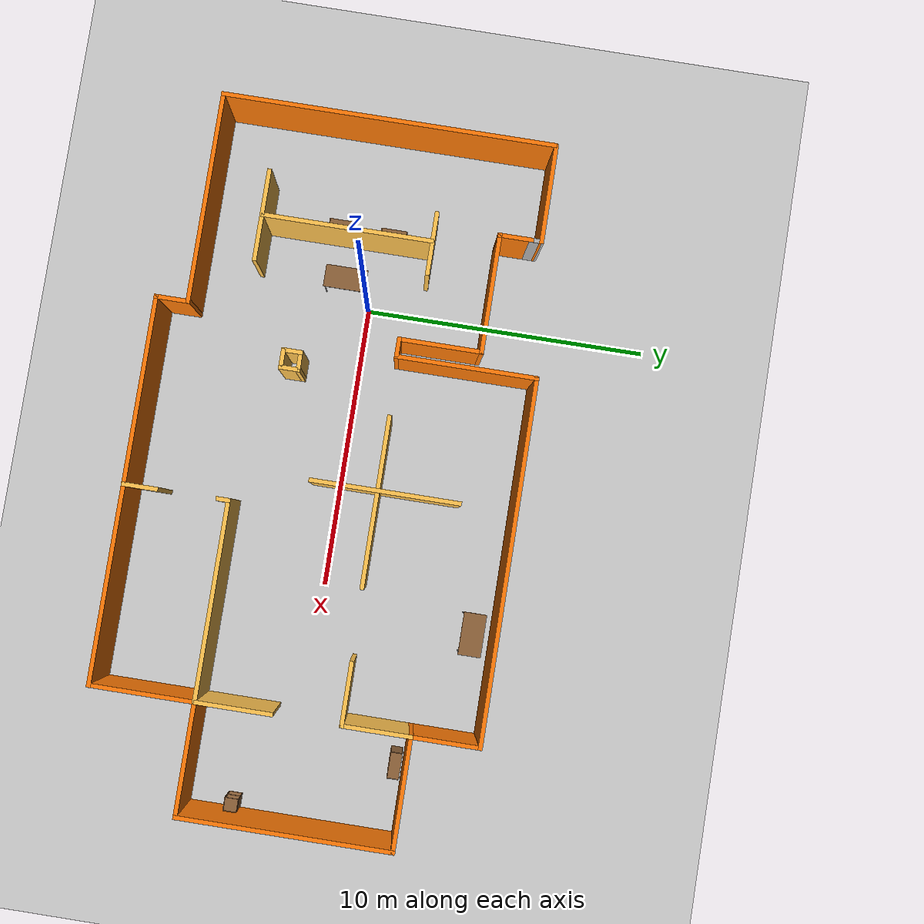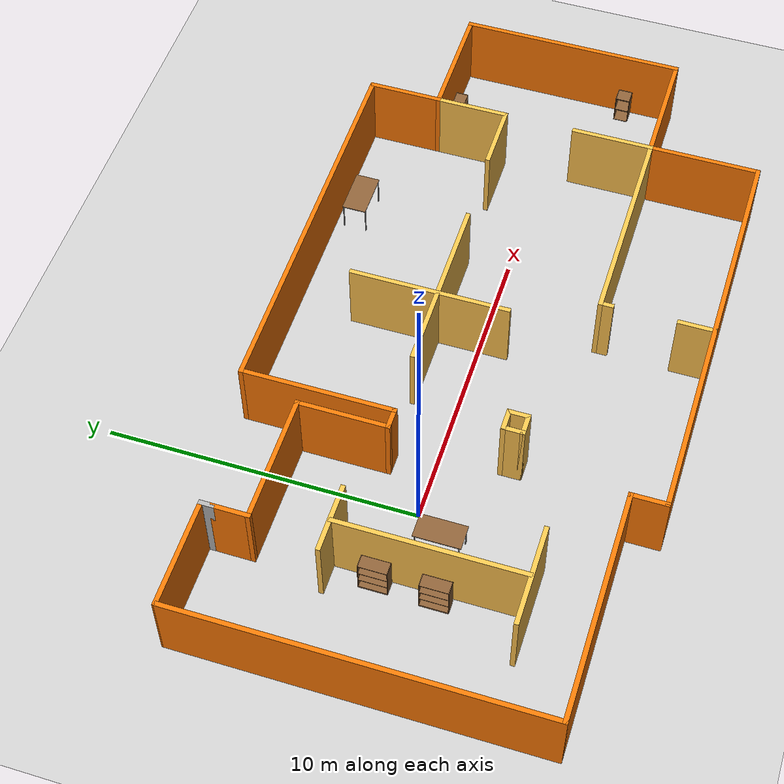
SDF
<sdf version="1.7">
 <world name="default">
  <light name="sun" type="directional">
   <pose>0 0 10 0 -0 0</pose>
   <diffuse>0.8 0.8 0.8 1</diffuse>
   <specular>0.2 0.2 0.2 1</specular>
   <attenuation>
    <range>1000</range>
    <constant>0.9</constant>
    <linear>0.01</linear>
    <quadratic>0.001</quadratic>
   </attenuation>
   <direction>-0.5 0.1 -0.9</direction>
   <spot><inner_angle>0</inner_angle><outer_angle>0</outer_angle><falloff>0</falloff></spot>
  </light>
  <model name="ground_plane">
   <static>1</static>
   <link name="link">
    <collision name="collision">
     <geometry><plane><normal>0 0 1</normal><size>100 100</size></plane></geometry>
     <surface><friction><ode><mu>100</mu><mu2>50</mu2></ode></friction></surface>
    </collision>
    <visual name="visual">
     <cast_shadows>0</cast_shadows>
     <geometry><plane><normal>0 0 1</normal><size>100 100</size></plane></geometry>
     <material><ambient>0.8 0.8 0.8 1</ambient><diffuse>0.8 0.8 0.8 1</diffuse></material>
    </visual>
   </link>
  </model>
  <gravity>0 0 -9.8</gravity>
  <magnetic_field>6e-06 2.3e-05 -4.2e-05</magnetic_field>
  <atmosphere type="adiabatic"/>
  <physics type="ode">
   <max_step_size>0.001</max_step_size>
   <real_time_factor>1</real_time_factor>
   <real_time_update_rate>1000</real_time_update_rate>
  </physics>
  <plugin filename="gz-sim-physics-system" name="gz::sim::systems::Physics"/>
  <plugin filename="gz-sim-user-commands-system" name="gz::sim::systems::UserCommands"/>
  <plugin filename="gz-sim-scene-broadcaster-system" name="gz::sim::systems::SceneBroadcaster"/>
  <plugin filename="gz-sim-sensors-system" name="gz::sim::systems::Sensors">
   <render_engine>ogre2</render_engine>
  </plugin>
  <plugin filename="gz-sim-imu-system" name="gz::sim::systems::Imu"/>
  <scene><ambient>0.4 0.4 0.4 1</ambient><background>0.7 0.7 0.7 1</background><shadows>1</shadows></scene>
  <audio><device>default</device></audio>
  <spherical_coordinates>
   <surface_model>EARTH_WGS84</surface_model>
   <latitude_deg>0</latitude_deg>
   <longitude_deg>0</longitude_deg>
   <elevation>0</elevation>
   <heading_deg>0</heading_deg>
  </spherical_coordinates>
  <model name="arm_house">
   <pose>6.02431 -0.472449 0 0 -0 0</pose>
   <link name="Wall_101">
    <collision name="Wall_101_Collision">
     <geometry><box><size>2.75 0.15 2.5</size></box></geometry>
     <pose>0 0 1.25 0 -0 0</pose>
    </collision>
    <visual name="Wall_101_Visual">
     <pose>0 0 1.25 0 -0 0</pose>
     <geometry><box><size>2.75 0.15 2.5</size></box></geometry>
     <material><ambient>1 0.764706 0.305882 1</ambient><diffuse>1 0.764706 0.305882 1</diffuse></material>
     <meta><layer>0</layer></meta>
    </visual>
    <pose>8.425 -1.75 0 0 -0 1.5708</pose>
   </link>
   <link name="Wall_103">
    <collision name="Wall_103_Collision">
     <geometry><box><size>7 0.15 2.5</size></box></geometry>
     <pose>0 0 1.25 0 -0 0</pose>
    </collision>
    <visual name="Wall_103_Visual">
     <pose>0 0 1.25 0 -0 0</pose>
     <geometry><box><size>7 0.15 2.5</size></box></geometry>
     <material><ambient>1 0.764706 0.305882 1</ambient><diffuse>1 0.764706 0.305882 1</diffuse></material>
     <meta><layer>0</layer></meta>
    </visual>
    <pose>5 -3.05 0 0 -0 3.14159</pose>
   </link>
   <link name="Wall_104">
    <collision name="Wall_104_Collision">
     <geometry><box><size>0.5 0.15 2.5</size></box></geometry>
     <pose>0 0 1.25 0 -0 0</pose>
    </collision>
    <visual name="Wall_104_Visual">
     <pose>0 0 1.25 0 -0 0</pose>
     <geometry><box><size>0.5 0.15 2.5</size></box></geometry>
     <material><ambient>1 0.764706 0.305882 1</ambient><diffuse>1 0.764706 0.305882 1</diffuse></material>
     <meta><layer>0</layer></meta>
    </visual>
    <pose>1.575 -3.225 0 0 -0 -1.5708</pose>
   </link>
   <link name="Wall_106">
    <collision name="Wall_106_Collision">
     <geometry><box><size>1.25 0.15 2.5</size></box></geometry>
     <pose>0 0 1.25 0 -0 0</pose>
    </collision>
    <visual name="Wall_106_Visual">
     <pose>0 0 1.25 0 -0 0</pose>
     <geometry><box><size>1.25 0.15 2.5</size></box></geometry>
     <material><ambient>1 0.764706 0.305882 1</ambient><diffuse>1 0.764706 0.305882 1</diffuse></material>
     <meta><layer>0</layer></meta>
    </visual>
    <pose>1.58669 -6.09197 0 0 -0 1.5708</pose>
   </link>
   <link name="Wall_108">
    <collision name="Wall_108_Collision">
     <geometry><box><size>0.75 0.15 2.5</size></box></geometry>
     <pose>0 0 1.25 0 -0 0</pose>
    </collision>
    <visual name="Wall_108_Visual">
     <pose>0 0 1.25 0 -0 0</pose>
     <geometry><box><size>0.75 0.15 2.5</size></box></geometry>
     <material><ambient>1 0.764706 0.305882 1</ambient><diffuse>1 0.764706 0.305882 1</diffuse></material>
     <meta><layer>0</layer></meta>
    </visual>
    <pose>-3.79225 -1.74467 0 0 -0 -1.5708</pose>
   </link>
   <link name="Wall_109">
    <collision name="Wall_109_Collision">
     <geometry><box><size>0.75 0.15 2.5</size></box></geometry>
     <pose>0 0 1.25 0 -0 0</pose>
    </collision>
    <visual name="Wall_109_Visual">
     <pose>0 0 1.25 0 -0 0</pose>
     <geometry><box><size>0.75 0.15 2.5</size></box></geometry>
     <material><ambient>1 0.764706 0.305882 1</ambient><diffuse>1 0.764706 0.305882 1</diffuse></material>
     <meta><layer>0</layer></meta>
    </visual>
    <pose>-3.49225 -2.04467 0 0 -0 0</pose>
   </link>
   <link name="Wall_110">
    <collision name="Wall_110_Collision">
     <geometry><box><size>0.75 0.15 2.5</size></box></geometry>
     <pose>0 0 1.25 0 -0 0</pose>
    </collision>
    <visual name="Wall_110_Visual">
     <pose>0 0 1.25 0 -0 0</pose>
     <geometry><box><size>0.75 0.15 2.5</size></box></geometry>
     <material><ambient>1 0.764706 0.305882 1</ambient><diffuse>1 0.764706 0.305882 1</diffuse></material>
     <meta><layer>0</layer></meta>
    </visual>
    <pose>-3.19225 -1.74467 0 0 -0 1.5708</pose>
   </link>
   <link name="Wall_111">
    <collision name="Wall_111_Collision">
     <geometry><box><size>0.75 0.15 2.5</size></box></geometry>
     <pose>0 0 1.25 0 -0 0</pose>
    </collision>
    <visual name="Wall_111_Visual">
     <pose>0 0 1.25 0 -0 0</pose>
     <geometry><box><size>0.75 0.15 2.5</size></box></geometry>
     <material><ambient>1 0.764706 0.305882 1</ambient><diffuse>1 0.764706 0.305882 1</diffuse></material>
     <meta><layer>0</layer></meta>
    </visual>
    <pose>-3.49225 -1.44467 0 0 -0 3.14159</pose>
   </link>
   <link name="Wall_67">
    <collision name="Wall_67_Collision">
     <geometry><box><size>11.75 0.15 2.5</size></box></geometry>
     <pose>0 0 1.25 0 -0 0</pose>
    </collision>
    <visual name="Wall_67_Visual">
     <pose>0 0 1.25 0 -0 0</pose>
     <geometry><box><size>11.75 0.15 2.5</size></box></geometry>
     <material>
      <ambient>0.996078 0.47451 0.0196078 1</ambient>
      <diffuse>0.996078 0.47451 0.0196078 1</diffuse>
     </material>
     <meta><layer>0</layer></meta>
    </visual>
    <pose>-12.275 0.25 0 0 -0 -1.5708</pose>
   </link>
   <link name="Wall_68">
    <collision name="Wall_68_Collision">
     <geometry><box><size>7.5 0.15 2.5</size></box></geometry>
     <pose>0 0 1.25 0 -0 0</pose>
    </collision>
    <visual name="Wall_68_Visual">
     <pose>0 0 1.25 0 -0 0</pose>
     <geometry><box><size>7.5 0.15 2.5</size></box></geometry>
     <material>
      <ambient>0.996078 0.47451 0.0196078 1</ambient>
      <diffuse>0.996078 0.47451 0.0196078 1</diffuse>
     </material>
     <meta><layer>0</layer></meta>
    </visual>
    <pose>-8.6 -5.55 0 0 -0 0</pose>
   </link>
   <link name="Wall_69">
    <collision name="Wall_69_Collision">
     <geometry><box><size>1.25 0.15 2.5</size></box></geometry>
     <pose>0 0 1.25 0 -0 0</pose>
    </collision>
    <visual name="Wall_69_Visual">
     <pose>0 0 1.25 0 -0 0</pose>
     <geometry><box><size>1.25 0.15 2.5</size></box></geometry>
     <material>
      <ambient>0.996078 0.47451 0.0196078 1</ambient>
      <diffuse>0.996078 0.47451 0.0196078 1</diffuse>
     </material>
     <meta><layer>0</layer></meta>
    </visual>
    <pose>-4.925 -6.1 0 0 -0 -1.5708</pose>
   </link>
   <link name="Wall_70">
    <collision name="Wall_70_Collision">
     <geometry><box><size>13.5 0.15 2.5</size></box></geometry>
     <pose>0 0 1.25 0 -0 0</pose>
    </collision>
    <visual name="Wall_70_Visual">
     <pose>0 0 1.25 0 -0 0</pose>
     <geometry><box><size>13.5 0.15 2.5</size></box></geometry>
     <material>
      <ambient>0.996078 0.47451 0.0196078 1</ambient>
      <diffuse>0.996078 0.47451 0.0196078 1</diffuse>
     </material>
     <meta><layer>0</layer></meta>
    </visual>
    <pose>1.75 -6.65 0 0 -0 0</pose>
   </link>
   <link name="Wall_71">
    <collision name="Wall_71_Collision">
     <geometry><box><size>3.75 0.15 2.5</size></box></geometry>
     <pose>0 0 1.25 0 -0 0</pose>
    </collision>
    <visual name="Wall_71_Visual">
     <pose>0 0 1.25 0 -0 0</pose>
     <geometry><box><size>3.75 0.15 2.5</size></box></geometry>
     <material>
      <ambient>0.996078 0.47451 0.0196078 1</ambient>
      <diffuse>0.996078 0.47451 0.0196078 1</diffuse>
     </material>
     <meta><layer>0</layer></meta>
    </visual>
    <pose>8.425 -4.85 0 0 -0 1.5708</pose>
   </link>
   <link name="Wall_72">
    <collision name="Wall_72_Collision">
     <geometry><box><size>4 0.15 2.5</size></box></geometry>
     <pose>0 0 1.25 0 -0 0</pose>
    </collision>
    <visual name="Wall_72_Visual">
     <pose>0 0 1.25 0 -0 0</pose>
     <geometry><box><size>4 0.15 2.5</size></box></geometry>
     <material>
      <ambient>0.996078 0.47451 0.0196078 1</ambient>
      <diffuse>0.996078 0.47451 0.0196078 1</diffuse>
     </material>
     <meta><layer>0</layer></meta>
    </visual>
    <pose>10.35 -3.05 0 0 -0 0</pose>
   </link>
   <link name="Wall_73">
    <collision name="Wall_73_Collision">
     <geometry><box><size>7.5 0.15 2.5</size></box></geometry>
     <pose>0 0 1.25 0 -0 0</pose>
    </collision>
    <visual name="Wall_73_Visual">
     <pose>0 0 1.25 0 -0 0</pose>
     <geometry><box><size>7.5 0.15 2.5</size></box></geometry>
     <material>
      <ambient>0.996078 0.47451 0.0196078 1</ambient>
      <diffuse>0.996078 0.47451 0.0196078 1</diffuse>
     </material>
     <meta><layer>0</layer></meta>
    </visual>
    <pose>12.275 0.625 0 0 -0 1.5708</pose>
   </link>
   <link name="Wall_74">
    <collision name="Wall_74_Collision">
     <geometry><box><size>4 0.15 2.5</size></box></geometry>
     <pose>0 0 1.25 0 -0 0</pose>
    </collision>
    <visual name="Wall_74_Visual">
     <pose>0 0 1.25 0 -0 0</pose>
     <geometry><box><size>4 0.15 2.5</size></box></geometry>
     <material>
      <ambient>0.996078 0.47451 0.0196078 1</ambient>
      <diffuse>0.996078 0.47451 0.0196078 1</diffuse>
     </material>
     <meta><layer>0</layer></meta>
    </visual>
    <pose>10.35 4.3 0 0 -0 3.14159</pose>
   </link>
   <link name="Wall_75">
    <collision name="Wall_75_Collision">
     <geometry><box><size>2.5 0.15 2.5</size></box></geometry>
     <pose>0 0 1.25 0 -0 0</pose>
    </collision>
    <visual name="Wall_75_Visual">
     <pose>0 0 1.25 0 -0 0</pose>
     <geometry><box><size>2.5 0.15 2.5</size></box></geometry>
     <material>
      <ambient>0.996078 0.47451 0.0196078 1</ambient>
      <diffuse>0.996078 0.47451 0.0196078 1</diffuse>
     </material>
     <meta><layer>0</layer></meta>
    </visual>
    <pose>8.425 5.475 0 0 -0 1.5708</pose>
   </link>
   <link name="Wall_76">
    <collision name="Wall_76_Collision">
     <geometry><box><size>12.75 0.15 2.5</size></box></geometry>
     <pose>0 0 1.25 0 -0 0</pose>
    </collision>
    <visual name="Wall_76_Visual">
     <pose>0 0 1.25 0 -0 0</pose>
     <geometry><box><size>12.75 0.15 2.5</size></box></geometry>
     <material>
      <ambient>0.996078 0.47451 0.0196078 1</ambient>
      <diffuse>0.996078 0.47451 0.0196078 1</diffuse>
     </material>
     <meta><layer>0</layer></meta>
    </visual>
    <pose>2.125 6.65 0 0 -0 3.14159</pose>
   </link>
   <link name="Wall_77">
    <collision name="Wall_77_Collision">
     <geometry><box><size>5 0.15 2.5</size></box></geometry>
     <pose>0 0 1.25 0 -0 0</pose>
    </collision>
    <visual name="Wall_77_Visual">
     <pose>0 0 1.25 0 -0 0</pose>
     <geometry><box><size>5 0.15 2.5</size></box></geometry>
     <material>
      <ambient>0.996078 0.47451 0.0196078 1</ambient>
      <diffuse>0.996078 0.47451 0.0196078 1</diffuse>
     </material>
     <meta><layer>0</layer></meta>
    </visual>
    <pose>-4.175 4.225 0 0 -0 -1.5708</pose>
   </link>
   <link name="Wall_78">
    <collision name="Wall_78_Collision">
     <geometry><box><size>0.75 0.15 2.5</size></box></geometry>
     <pose>0 0 1.25 0 -0 0</pose>
    </collision>
    <visual name="Wall_78_Visual">
     <pose>0 0 1.25 0 -0 0</pose>
     <geometry><box><size>0.75 0.15 2.5</size></box></geometry>
     <material>
      <ambient>0.996078 0.47451 0.0196078 1</ambient>
      <diffuse>0.996078 0.47451 0.0196078 1</diffuse>
     </material>
     <meta><layer>0</layer></meta>
    </visual>
    <pose>-4.475 1.8 0 0 -0 3.14159</pose>
   </link>
   <link name="Wall_79">
    <collision name="Wall_79_Collision">
     <geometry><box><size>3 0.15 2.5</size></box></geometry>
     <pose>0 0 1.25 0 -0 0</pose>
    </collision>
    <visual name="Wall_79_Visual">
     <pose>0 0 1.25 0 -0 0</pose>
     <geometry><box><size>3 0.15 2.5</size></box></geometry>
     <material>
      <ambient>0.996078 0.47451 0.0196078 1</ambient>
      <diffuse>0.996078 0.47451 0.0196078 1</diffuse>
     </material>
     <meta><layer>0</layer></meta>
    </visual>
    <pose>-4.775 3.225 0 0 -0 1.5708</pose>
   </link>
   <link name="Wall_80">
    <collision name="Wall_80_Collision">
     <geometry><box><size>4.25 0.15 2.5</size></box></geometry>
     <pose>0 0 1.25 0 -0 0</pose>
    </collision>
    <visual name="Wall_80_Visual">
     <pose>0 0 1.25 0 -0 0</pose>
     <geometry><box><size>4.25 0.15 2.5</size></box></geometry>
     <material>
      <ambient>0.996078 0.47451 0.0196078 1</ambient>
      <diffuse>0.996078 0.47451 0.0196078 1</diffuse>
     </material>
     <meta><layer>0</layer></meta>
    </visual>
    <pose>-6.825 4.65 0 0 -0 3.14159</pose>
   </link>
   <link name="Wall_81">
    <collision name="Wall_81_Collision">
     <geometry><box><size>1.25 0.15 2.5</size></box></geometry>
     <pose>0 0 1.25 0 -0 0</pose>
    </collision>
    <visual name="Wall_81_Visual">
     <pose>0 0 1.25 0 -0 0</pose>
     <geometry><box><size>1.25 0.15 2.5</size></box></geometry>
     <material>
      <ambient>0.996078 0.47451 0.0196078 1</ambient>
      <diffuse>0.996078 0.47451 0.0196078 1</diffuse>
     </material>
     <meta><layer>0</layer></meta>
    </visual>
    <pose>-8.875 5.2 0 0 -0 1.5708</pose>
   </link>
   <link name="Wall_82">
    <collision name="Wall_82_Collision">
     <geometry><box><size>0.5 0.15 2.5</size></box></geometry>
     <pose>0 0 1.25 0 -0 0</pose>
    </collision>
    <visual name="Wall_82_Visual">
     <pose>0 0 1.25 0 -0 0</pose>
     <geometry><box><size>0.5 0.15 2.5</size></box></geometry>
     <material><ambient>1 1 1 1</ambient><diffuse>0.7 0.7 0.7 1</diffuse></material>
     <meta><layer>0</layer></meta>
    </visual>
    <pose>-8.875 5.925 0 0 -0 1.5708</pose>
   </link>
   <link name="Wall_83">
    <collision name="Wall_83_Collision">
     <geometry><box><size>3.5422 0.15 2.5</size></box></geometry>
     <pose>0 0 1.25 0 -0 0</pose>
    </collision>
    <visual name="Wall_83_Visual">
     <pose>0 0 1.25 0 -0 0</pose>
     <geometry><box><size>3.5422 0.15 2.5</size></box></geometry>
     <material>
      <ambient>0.996078 0.47451 0.0196078 1</ambient>
      <diffuse>0.996078 0.47451 0.0196078 1</diffuse>
     </material>
     <meta><layer>0</layer></meta>
    </visual>
    <pose>-10.5711 6.09939 0 0 -0 -3.14123</pose>
   </link>
   <link name="Wall_85">
    <collision name="Wall_85_Collision">
     <geometry><box><size>2.25 0.15 2.5</size></box></geometry>
     <pose>0 0 1.25 0 -0 0</pose>
    </collision>
    <visual name="Wall_85_Visual">
     <pose>0 0 1.25 0 -0 0</pose>
     <geometry><box><size>2.25 0.15 2.5</size></box></geometry>
     <material><ambient>1 0.764706 0.305882 1</ambient><diffuse>1 0.764706 0.305882 1</diffuse></material>
     <meta><layer>0</layer></meta>
    </visual>
    <pose>-8.22484 2.39665 0 0 -0 0</pose>
   </link>
   <link name="Wall_87">
    <collision name="Wall_87_Collision">
     <geometry><box><size>6 0.15 2.5</size></box></geometry>
     <pose>0 0 1.25 0 -0 0</pose>
    </collision>
    <visual name="Wall_87_Visual">
     <pose>0 0 1.25 0 -0 0</pose>
     <geometry><box><size>6 0.15 2.5</size></box></geometry>
     <material><ambient>1 0.764706 0.305882 1</ambient><diffuse>1 0.764706 0.305882 1</diffuse></material>
     <meta><layer>0</layer></meta>
    </visual>
    <pose>-8.30484 -0.567336 0 0 -0 -1.5708</pose>
   </link>
   <link name="Wall_90">
    <collision name="Wall_90_Collision">
     <geometry><box><size>3.25 0.15 2.5</size></box></geometry>
     <pose>0 0 1.25 0 -0 0</pose>
    </collision>
    <visual name="Wall_90_Visual">
     <pose>0 0 1.25 0 -0 0</pose>
     <geometry><box><size>3.25 0.15 2.5</size></box></geometry>
     <material><ambient>1 0.764706 0.305882 1</ambient><diffuse>1 0.764706 0.305882 1</diffuse></material>
     <meta><layer>0</layer></meta>
    </visual>
    <pose>-8.2937 -3.54127 0 0 -0 0</pose>
   </link>
   <link name="Wall_92">
    <collision name="Wall_92_Collision">
     <geometry><box><size>6 0.15 2.5</size></box></geometry>
     <pose>0 0 1.25 0 -0 0</pose>
    </collision>
    <visual name="Wall_92_Visual">
     <pose>0 0 1.25 0 -0 0</pose>
     <geometry><box><size>6 0.15 2.5</size></box></geometry>
     <material><ambient>1 0.764706 0.305882 1</ambient><diffuse>1 0.764706 0.305882 1</diffuse></material>
     <meta><layer>0</layer></meta>
    </visual>
    <pose>0.843608 1.89041 0 0 -0 0</pose>
   </link>
   <link name="Wall_94">
    <collision name="Wall_94_Collision">
     <geometry><box><size>5.25 0.15 2.5</size></box></geometry>
     <pose>0 0 1.25 0 -0 0</pose>
    </collision>
    <visual name="Wall_94_Visual">
     <pose>0 0 1.25 0 -0 0</pose>
     <geometry><box><size>5.25 0.15 2.5</size></box></geometry>
     <material><ambient>1 0.764706 0.305882 1</ambient><diffuse>1 0.764706 0.305882 1</diffuse></material>
     <meta><layer>0</layer></meta>
    </visual>
    <pose>0.454094 2.15132 0 0 -0 -1.5708</pose>
   </link>
   <link name="Wall_98">
    <collision name="Wall_98_Collision">
     <geometry><box><size>2.5 0.15 2.5</size></box></geometry>
     <pose>0 0 1.25 0 -0 0</pose>
    </collision>
    <visual name="Wall_98_Visual">
     <pose>0 0 1.25 0 -0 0</pose>
     <geometry><box><size>2.5 0.15 2.5</size></box></geometry>
     <material><ambient>1 0.764706 0.305882 1</ambient><diffuse>1 0.764706 0.305882 1</diffuse></material>
     <meta><layer>0</layer></meta>
    </visual>
    <pose>8.425 3.125 0 0 -0 -1.5708</pose>
   </link>
   <link name="Wall_99">
    <collision name="Wall_99_Collision">
     <geometry><box><size>2.25 0.15 2.5</size></box></geometry>
     <pose>0 0 1.25 0 -0 0</pose>
    </collision>
    <visual name="Wall_99_Visual">
     <pose>0 0 1.25 0 -0 0</pose>
     <geometry><box><size>2.25 0.15 2.5</size></box></geometry>
     <material><ambient>1 0.764706 0.305882 1</ambient><diffuse>1 0.764706 0.305882 1</diffuse></material>
     <meta><layer>0</layer></meta>
    </visual>
    <pose>7.375 1.95 0 0 -0 3.14159</pose>
   </link>
   <static>1</static>
  </model>
  <model name="table">
   <static>1</static>
   <link name="link">
    <collision name="surface">
     <pose>0 0 1 0 -0 0</pose>
     <geometry><box><size>1.5 0.8 0.03</size></box></geometry>
     <surface><friction><ode><mu>0.6</mu><mu2>0.6</mu2></ode></friction></surface>
    </collision>
    <visual name="visual1">
     <pose>0 0 1 0 -0 0</pose>
     <geometry><box><size>1.5 0.8 0.03</size></box></geometry>
     <material><ambient>0.55 0.38 0.22 1</ambient><diffuse>0.55 0.38 0.22 1</diffuse></material>
    </visual>
    <collision name="front_left_leg">
     <pose>0.68 0.38 0.5 0 -0 0</pose>
     <geometry><cylinder><radius>0.02</radius><length>1</length></cylinder></geometry>
    </collision>
    <visual name="front_left_leg">
     <pose>0.68 0.38 0.5 0 -0 0</pose>
     <geometry><cylinder><radius>0.02</radius><length>1</length></cylinder></geometry>
     <material><ambient>0.3 0.3 0.3 1</ambient><diffuse>0.7 0.7 0.7 1</diffuse></material>
    </visual>
    <collision name="front_right_leg">
     <pose>0.68 -0.38 0.5 0 -0 0</pose>
     <geometry><cylinder><radius>0.02</radius><length>1</length></cylinder></geometry>
    </collision>
    <visual name="front_right_leg">
     <pose>0.68 -0.38 0.5 0 -0 0</pose>
     <geometry><cylinder><radius>0.02</radius><length>1</length></cylinder></geometry>
     <material><ambient>0.3 0.3 0.3 1</ambient><diffuse>0.7 0.7 0.7 1</diffuse></material>
    </visual>
    <collision name="back_right_leg">
     <pose>-0.68 -0.38 0.5 0 -0 0</pose>
     <geometry><cylinder><radius>0.02</radius><length>1</length></cylinder></geometry>
    </collision>
    <visual name="back_right_leg">
     <pose>-0.68 -0.38 0.5 0 -0 0</pose>
     <geometry><cylinder><radius>0.02</radius><length>1</length></cylinder></geometry>
     <material><ambient>0.3 0.3 0.3 1</ambient><diffuse>0.7 0.7 0.7 1</diffuse></material>
    </visual>
    <collision name="back_left_leg">
     <pose>-0.68 0.38 0.5 0 -0 0</pose>
     <geometry><cylinder><radius>0.02</radius><length>1</length></cylinder></geometry>
    </collision>
    <visual name="back_left_leg">
     <pose>-0.68 0.38 0.5 0 -0 0</pose>
     <geometry><cylinder><radius>0.02</radius><length>1</length></cylinder></geometry>
     <material><ambient>0.3 0.3 0.3 1</ambient><diffuse>0.7 0.7 0.7 1</diffuse></material>
    </visual>
   </link>
   <pose>10.877 5.44197 0 0 -0 0</pose>
  </model>
  <model name="table_0">
   <static>1</static>
   <link name="link">
    <collision name="surface">
     <pose>0 0 1 0 -0 0</pose>
     <geometry><box><size>1.5 0.8 0.03</size></box></geometry>
     <surface><friction><ode><mu>0.6</mu><mu2>0.6</mu2></ode></friction></surface>
    </collision>
    <visual name="visual1">
     <pose>0 0 1 0 -0 0</pose>
     <geometry><box><size>1.5 0.8 0.03</size></box></geometry>
     <material><ambient>0.55 0.38 0.22 1</ambient><diffuse>0.55 0.38 0.22 1</diffuse></material>
    </visual>
    <collision name="front_left_leg">
     <pose>0.68 0.38 0.5 0 -0 0</pose>
     <geometry><cylinder><radius>0.02</radius><length>1</length></cylinder></geometry>
    </collision>
    <visual name="front_left_leg">
     <pose>0.68 0.38 0.5 0 -0 0</pose>
     <geometry><cylinder><radius>0.02</radius><length>1</length></cylinder></geometry>
     <material><ambient>0.3 0.3 0.3 1</ambient><diffuse>0.7 0.7 0.7 1</diffuse></material>
    </visual>
    <collision name="front_right_leg">
     <pose>0.68 -0.38 0.5 0 -0 0</pose>
     <geometry><cylinder><radius>0.02</radius><length>1</length></cylinder></geometry>
    </collision>
    <visual name="front_right_leg">
     <pose>0.68 -0.38 0.5 0 -0 0</pose>
     <geometry><cylinder><radius>0.02</radius><length>1</length></cylinder></geometry>
     <material><ambient>0.3 0.3 0.3 1</ambient><diffuse>0.7 0.7 0.7 1</diffuse></material>
    </visual>
    <collision name="back_right_leg">
     <pose>-0.68 -0.38 0.5 0 -0 0</pose>
     <geometry><cylinder><radius>0.02</radius><length>1</length></cylinder></geometry>
    </collision>
    <visual name="back_right_leg">
     <pose>-0.68 -0.38 0.5 0 -0 0</pose>
     <geometry><cylinder><radius>0.02</radius><length>1</length></cylinder></geometry>
     <material><ambient>0.3 0.3 0.3 1</ambient><diffuse>0.7 0.7 0.7 1</diffuse></material>
    </visual>
    <collision name="back_left_leg">
     <pose>-0.68 0.38 0.5 0 -0 0</pose>
     <geometry><cylinder><radius>0.02</radius><length>1</length></cylinder></geometry>
    </collision>
    <visual name="back_left_leg">
     <pose>-0.68 0.38 0.5 0 -0 0</pose>
     <geometry><cylinder><radius>0.02</radius><length>1</length></cylinder></geometry>
     <material><ambient>0.3 0.3 0.3 1</ambient><diffuse>0.7 0.7 0.7 1</diffuse></material>
    </visual>
   </link>
   <pose>-0.858105 -0.940463 0 0 -0 1.5708</pose>
  </model>
  <model name="bookshelf">
   <static>1</static>
   <link name="link">
    <inertial><mass>1</mass></inertial>
    <collision name="back">
     <pose>0 0.005 0.6 0 -0 0</pose>
     <geometry><box><size>0.9 0.01 1.2</size></box></geometry>
    </collision>
    <visual name="visual1">
     <pose>0 0.005 0.6 0 -0 0</pose>
     <geometry><box><size>0.9 0.01 1.2</size></box></geometry>
     <material><ambient>0.55 0.38 0.22 1</ambient><diffuse>0.55 0.38 0.22 1</diffuse></material>
    </visual>
    <collision name="left_side">
     <pose>0.45 -0.195 0.6 0 -0 0</pose>
     <geometry><box><size>0.02 0.4 1.2</size></box></geometry>
    </collision>
    <visual name="visual2">
     <pose>0.45 -0.195 0.6 0 -0 0</pose>
     <geometry><box><size>0.02 0.4 1.2</size></box></geometry>
     <material><ambient>0.55 0.38 0.22 1</ambient><diffuse>0.55 0.38 0.22 1</diffuse></material>
    </visual>
    <collision name="right_side">
     <pose>-0.45 -0.195 0.6 0 -0 0</pose>
     <geometry><box><size>0.02 0.4 1.2</size></box></geometry>
    </collision>
    <visual name="visual3">
     <pose>-0.45 -0.195 0.6 0 -0 0</pose>
     <geometry><box><size>0.02 0.4 1.2</size></box></geometry>
     <material><ambient>0.55 0.38 0.22 1</ambient><diffuse>0.55 0.38 0.22 1</diffuse></material>
    </visual>
    <collision name="bottom">
     <pose>0 -0.195 0.03 0 -0 0</pose>
     <geometry><box><size>0.88 0.4 0.06</size></box></geometry>
    </collision>
    <visual name="visual4">
     <pose>0 -0.195 0.03 0 -0 0</pose>
     <geometry><box><size>0.88 0.4 0.06</size></box></geometry>
     <material><ambient>0.55 0.38 0.22 1</ambient><diffuse>0.55 0.38 0.22 1</diffuse></material>
    </visual>
    <collision name="top">
     <pose>0 -0.195 1.19 0 -0 0</pose>
     <geometry><box><size>0.88 0.4 0.02</size></box></geometry>
    </collision>
    <visual name="visual5">
     <pose>0 -0.195 1.19 0 -0 0</pose>
     <geometry><box><size>0.88 0.4 0.02</size></box></geometry>
     <material><ambient>0.55 0.38 0.22 1</ambient><diffuse>0.55 0.38 0.22 1</diffuse></material>
    </visual>
    <collision name="low_shelf">
     <pose>0 -0.195 0.43 0 -0 0</pose>
     <geometry><box><size>0.88 0.4 0.02</size></box></geometry>
    </collision>
    <visual name="visual6">
     <pose>0 -0.195 0.43 0 -0 0</pose>
     <geometry><box><size>0.88 0.4 0.02</size></box></geometry>
     <material><ambient>0.55 0.38 0.22 1</ambient><diffuse>0.55 0.38 0.22 1</diffuse></material>
    </visual>
    <collision name="high_shelf">
     <pose>0 -0.195 0.8 0 -0 0</pose>
     <geometry><box><size>0.88 0.4 0.02</size></box></geometry>
    </collision>
    <visual name="visual7">
     <pose>0 -0.195 0.8 0 -0 0</pose>
     <geometry><box><size>0.88 0.4 0.02</size></box></geometry>
     <material><ambient>0.55 0.38 0.22 1</ambient><diffuse>0.55 0.38 0.22 1</diffuse></material>
    </visual>
   </link>
   <pose>15.7179 3.66672 0 0 -0 0</pose>
  </model>
  <model name="cabinet">
   <static>1</static>
   <link name="cabinet_bottom_plate">
    <inertial>
     <pose>0 0 -1 0 -0 0</pose>
     <inertia><ixx>2.05</ixx><ixy>0</ixy><ixz>0</ixz><iyy>2.05</iyy><iyz>0</iyz><izz>2.05</izz></inertia>
     <mass>25</mass>
    </inertial>
    <collision name="cabinet_bottom_plate_geom">
     <pose>0 0 0.01 0 -0 0</pose>
     <geometry><box><size>0.45 0.45 0.02</size></box></geometry>
    </collision>
    <visual name="cabinet_bottom_plate_geom_visual">
     <pose>0 0 0.01 0 -0 0</pose>
     <geometry><box><size>0.45 0.45 0.02</size></box></geometry>
     <material><ambient>0.55 0.38 0.22 1</ambient><diffuse>0.55 0.38 0.22 1</diffuse></material>
    </visual>
    <collision name="cabinet_bottom_plate_geom_cabinet_back_plate">
     <pose>0.235 0 0.51 0 -0 0</pose>
     <geometry><box><size>0.02 0.45 1.02</size></box></geometry>
    </collision>
    <visual name="cabinet_bottom_plate_geom_cabinet_back_plate_visual">
     <pose>0.235 0 0.51 0 -0 0</pose>
     <geometry><box><size>0.02 0.45 1.02</size></box></geometry>
     <material><ambient>0.55 0.38 0.22 1</ambient><diffuse>0.55 0.38 0.22 1</diffuse></material>
    </visual>
    <collision name="cabinet_bottom_plate_geom_cabinet_left_plate">
     <pose>0 0.235 0.51 0 -0 0</pose>
     <geometry><box><size>0.45 0.02 1.02</size></box></geometry>
    </collision>
    <visual name="cabinet_bottom_plate_geom_cabinet_left_plate_visual">
     <pose>0 0.235 0.51 0 -0 0</pose>
     <geometry><box><size>0.45 0.02 1.02</size></box></geometry>
     <material><ambient>0.55 0.38 0.22 1</ambient><diffuse>0.55 0.38 0.22 1</diffuse></material>
    </visual>
    <collision name="cabinet_bottom_plate_geom_cabinet_middle_plate">
     <pose>0 0 0.51 0 -0 0</pose>
     <geometry><box><size>0.45 0.45 0.02</size></box></geometry>
    </collision>
    <visual name="cabinet_bottom_plate_geom_cabinet_middle_plate_visual">
     <pose>0 0 0.51 0 -0 0</pose>
     <geometry><box><size>0.45 0.45 0.02</size></box></geometry>
     <material><ambient>0.55 0.38 0.22 1</ambient><diffuse>0.55 0.38 0.22 1</diffuse></material>
    </visual>
    <collision name="cabinet_bottom_plate_geom_cabinet_right_plate">
     <pose>0 -0.235 0.51 0 -0 0</pose>
     <geometry><box><size>0.45 0.02 1.02</size></box></geometry>
    </collision>
    <visual name="cabinet_bottom_plate_geom_cabinet_right_plate_visual">
     <pose>0 -0.235 0.51 0 -0 0</pose>
     <geometry><box><size>0.45 0.02 1.02</size></box></geometry>
     <material><ambient>0.55 0.38 0.22 1</ambient><diffuse>0.55 0.38 0.22 1</diffuse></material>
    </visual>
    <collision name="cabinet_bottom_plate_geom_cabinet_top_plate">
     <pose>0 0 1.01 0 -0 0</pose>
     <geometry><box><size>0.45 0.45 0.02</size></box></geometry>
    </collision>
    <visual name="cabinet_bottom_plate_geom_cabinet_top_plate_visual">
     <pose>0 0 1.01 0 -0 0</pose>
     <geometry><box><size>0.45 0.45 0.02</size></box></geometry>
     <material><ambient>0.55 0.38 0.22 1</ambient><diffuse>0.55 0.38 0.22 1</diffuse></material>
    </visual>
   </link>
   <pose>17.9563 -1.91714 0 0 -0 0</pose>
  </model>
  <model name="bookshelf_0">
   <static>1</static>
   <link name="link">
    <inertial><mass>1</mass></inertial>
    <collision name="back">
     <pose>0 0.005 0.6 0 -0 0</pose>
     <geometry><box><size>0.9 0.01 1.2</size></box></geometry>
    </collision>
    <visual name="visual1">
     <pose>0 0.005 0.6 0 -0 0</pose>
     <geometry><box><size>0.9 0.01 1.2</size></box></geometry>
     <material><ambient>0.55 0.38 0.22 1</ambient><diffuse>0.55 0.38 0.22 1</diffuse></material>
    </visual>
    <collision name="left_side">
     <pose>0.45 -0.195 0.6 0 -0 0</pose>
     <geometry><box><size>0.02 0.4 1.2</size></box></geometry>
    </collision>
    <visual name="visual2">
     <pose>0.45 -0.195 0.6 0 -0 0</pose>
     <geometry><box><size>0.02 0.4 1.2</size></box></geometry>
     <material><ambient>0.55 0.38 0.22 1</ambient><diffuse>0.55 0.38 0.22 1</diffuse></material>
    </visual>
    <collision name="right_side">
     <pose>-0.45 -0.195 0.6 0 -0 0</pose>
     <geometry><box><size>0.02 0.4 1.2</size></box></geometry>
    </collision>
    <visual name="visual3">
     <pose>-0.45 -0.195 0.6 0 -0 0</pose>
     <geometry><box><size>0.02 0.4 1.2</size></box></geometry>
     <material><ambient>0.55 0.38 0.22 1</ambient><diffuse>0.55 0.38 0.22 1</diffuse></material>
    </visual>
    <collision name="bottom">
     <pose>0 -0.195 0.03 0 -0 0</pose>
     <geometry><box><size>0.88 0.4 0.06</size></box></geometry>
    </collision>
    <visual name="visual4">
     <pose>0 -0.195 0.03 0 -0 0</pose>
     <geometry><box><size>0.88 0.4 0.06</size></box></geometry>
     <material><ambient>0.55 0.38 0.22 1</ambient><diffuse>0.55 0.38 0.22 1</diffuse></material>
    </visual>
    <collision name="top">
     <pose>0 -0.195 1.19 0 -0 0</pose>
     <geometry><box><size>0.88 0.4 0.02</size></box></geometry>
    </collision>
    <visual name="visual5">
     <pose>0 -0.195 1.19 0 -0 0</pose>
     <geometry><box><size>0.88 0.4 0.02</size></box></geometry>
     <material><ambient>0.55 0.38 0.22 1</ambient><diffuse>0.55 0.38 0.22 1</diffuse></material>
    </visual>
    <collision name="low_shelf">
     <pose>0 -0.195 0.43 0 -0 0</pose>
     <geometry><box><size>0.88 0.4 0.02</size></box></geometry>
    </collision>
    <visual name="visual6">
     <pose>0 -0.195 0.43 0 -0 0</pose>
     <geometry><box><size>0.88 0.4 0.02</size></box></geometry>
     <material><ambient>0.55 0.38 0.22 1</ambient><diffuse>0.55 0.38 0.22 1</diffuse></material>
    </visual>
    <collision name="high_shelf">
     <pose>0 -0.195 0.8 0 -0 0</pose>
     <geometry><box><size>0.88 0.4 0.02</size></box></geometry>
    </collision>
    <visual name="visual7">
     <pose>0 -0.195 0.8 0 -0 0</pose>
     <geometry><box><size>0.88 0.4 0.02</size></box></geometry>
     <material><ambient>0.55 0.38 0.22 1</ambient><diffuse>0.55 0.38 0.22 1</diffuse></material>
    </visual>
   </link>
   <pose>-2.41159 0.51359 0 0 0 -1.5708</pose>
  </model>
  <model name="bookshelf_1">
   <static>1</static>
   <link name="link">
    <inertial><mass>1</mass></inertial>
    <collision name="back">
     <pose>0 0.005 0.6 0 -0 0</pose>
     <geometry><box><size>0.9 0.01 1.2</size></box></geometry>
    </collision>
    <visual name="visual1">
     <pose>0 0.005 0.6 0 -0 0</pose>
     <geometry><box><size>0.9 0.01 1.2</size></box></geometry>
     <material><ambient>0.55 0.38 0.22 1</ambient><diffuse>0.55 0.38 0.22 1</diffuse></material>
    </visual>
    <collision name="left_side">
     <pose>0.45 -0.195 0.6 0 -0 0</pose>
     <geometry><box><size>0.02 0.4 1.2</size></box></geometry>
    </collision>
    <visual name="visual2">
     <pose>0.45 -0.195 0.6 0 -0 0</pose>
     <geometry><box><size>0.02 0.4 1.2</size></box></geometry>
     <material><ambient>0.55 0.38 0.22 1</ambient><diffuse>0.55 0.38 0.22 1</diffuse></material>
    </visual>
    <collision name="right_side">
     <pose>-0.45 -0.195 0.6 0 -0 0</pose>
     <geometry><box><size>0.02 0.4 1.2</size></box></geometry>
    </collision>
    <visual name="visual3">
     <pose>-0.45 -0.195 0.6 0 -0 0</pose>
     <geometry><box><size>0.02 0.4 1.2</size></box></geometry>
     <material><ambient>0.55 0.38 0.22 1</ambient><diffuse>0.55 0.38 0.22 1</diffuse></material>
    </visual>
    <collision name="bottom">
     <pose>0 -0.195 0.03 0 -0 0</pose>
     <geometry><box><size>0.88 0.4 0.06</size></box></geometry>
    </collision>
    <visual name="visual4">
     <pose>0 -0.195 0.03 0 -0 0</pose>
     <geometry><box><size>0.88 0.4 0.06</size></box></geometry>
     <material><ambient>0.55 0.38 0.22 1</ambient><diffuse>0.55 0.38 0.22 1</diffuse></material>
    </visual>
    <collision name="top">
     <pose>0 -0.195 1.19 0 -0 0</pose>
     <geometry><box><size>0.88 0.4 0.02</size></box></geometry>
    </collision>
    <visual name="visual5">
     <pose>0 -0.195 1.19 0 -0 0</pose>
     <geometry><box><size>0.88 0.4 0.02</size></box></geometry>
     <material><ambient>0.55 0.38 0.22 1</ambient><diffuse>0.55 0.38 0.22 1</diffuse></material>
    </visual>
    <collision name="low_shelf">
     <pose>0 -0.195 0.43 0 -0 0</pose>
     <geometry><box><size>0.88 0.4 0.02</size></box></geometry>
    </collision>
    <visual name="visual6">
     <pose>0 -0.195 0.43 0 -0 0</pose>
     <geometry><box><size>0.88 0.4 0.02</size></box></geometry>
     <material><ambient>0.55 0.38 0.22 1</ambient><diffuse>0.55 0.38 0.22 1</diffuse></material>
    </visual>
    <collision name="high_shelf">
     <pose>0 -0.195 0.8 0 -0 0</pose>
     <geometry><box><size>0.88 0.4 0.02</size></box></geometry>
    </collision>
    <visual name="visual7">
     <pose>0 -0.195 0.8 0 -0 0</pose>
     <geometry><box><size>0.88 0.4 0.02</size></box></geometry>
     <material><ambient>0.55 0.38 0.22 1</ambient><diffuse>0.55 0.38 0.22 1</diffuse></material>
    </visual>
   </link>
   <pose>-2.46938 -1.35684 0 0 0 -1.5708</pose>
  </model>
 </world>
</sdf>
